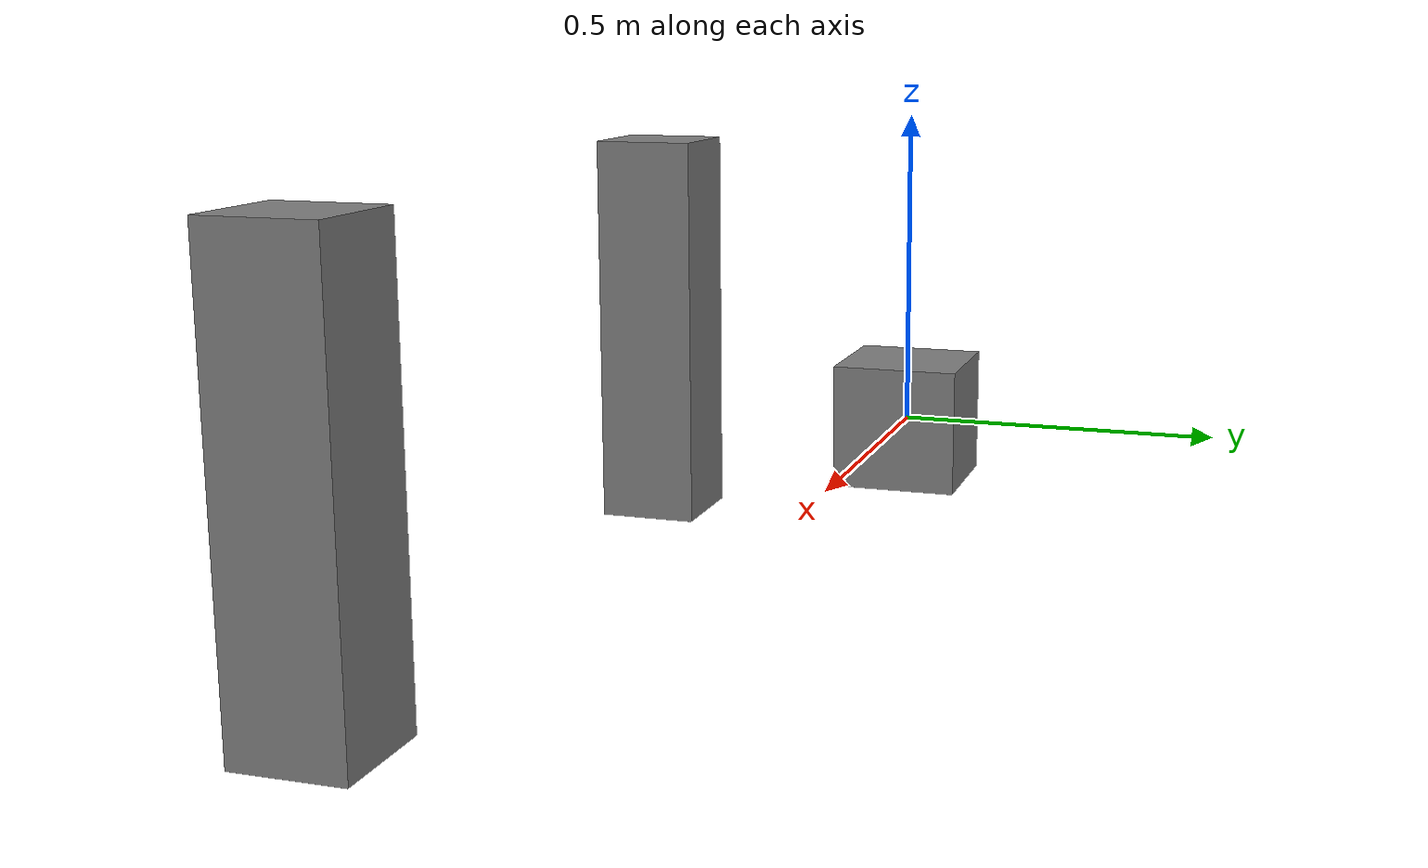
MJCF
<mujoco model="frames">
    <compiler meshdir="assets"/>

    <asset>
        <mesh name="ObjBox" file="box.obj" scale="0.2 0.2 0.8"/>
    </asset>

    <worldbody>
        <body name="mainBody">
            <geom name="originBox" type="box" size="0.1 0.1 0.1" pos="0 0 0"/>
            <frame pos="0 0 1" euler="0 0 45">
                <geom name="framedGeom" type="box" size="0.1 0.1 0.4" pos="0 -1 -1" quat="0.9238795 0 0 0.3826834"/>
            </frame>
            <frame pos="0 0 1" euler="0 0 45">
                <body name="framedBody">
                    <geom type="mesh" mesh="ObjBox" pos="-1 0 -1" quat="0.9238795 0 0 0.3826834"/>
                </body>
            </frame>
        </body>
    </worldbody>
</mujoco>
